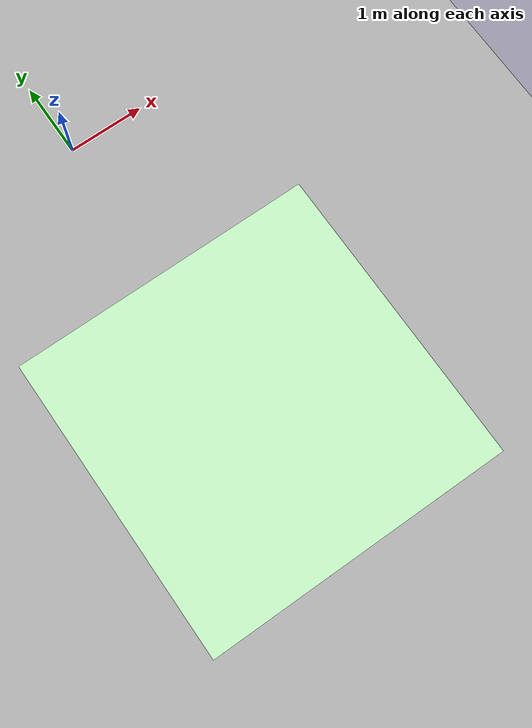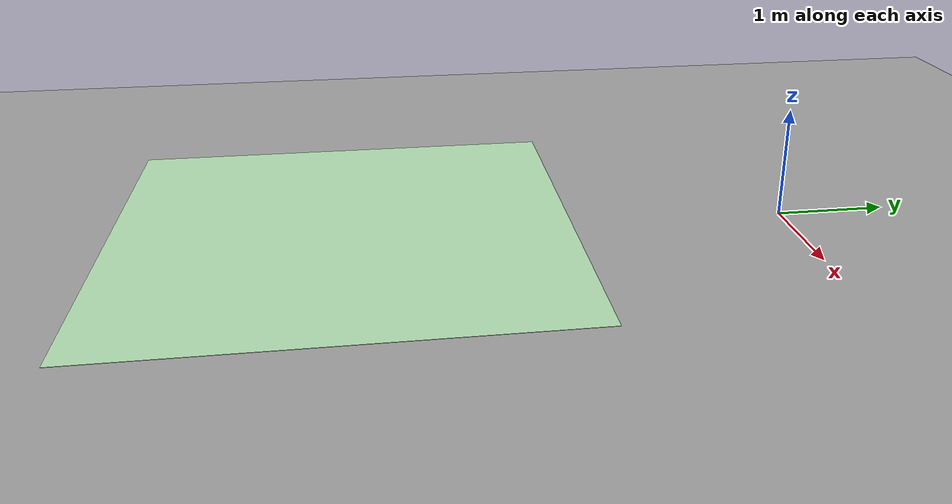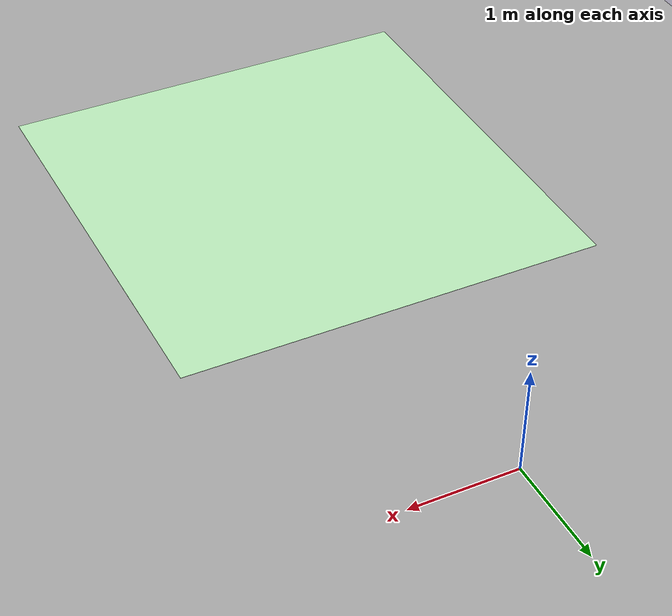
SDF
<?xml version="1.0" ?>
<?xml-model href="http://sdformat.org/schemas/root.xsd" schematypens="http://www.w3.org/2001/XMLSchema"?>
<sdf version="1.5">
  <world name="default">

    <gui fullscreen="1"></gui>

    <include>
  	  <uri>model://sun</uri>
	  </include>

    <!-- Ground -->
	  <include>
  		<uri>model://grass_plane</uri>
	  </include>

    <!-- JdeRobot Logo -->
    <include>
		  <name>logo</name>
			<uri>model://logoJdeRobot</uri>
			<pose>0 -4 0 0 0 0</pose>
	  </include>

		<!-- Sky -->
	  <scene>
        <shadows>0</shadows>
        <ambient>0.4 0.4 0.4 1.0</ambient>
        <background>0.7 0.7 0.7 1</background>
	    <sky>
	        <clouds>
	            <speed>12</speed>
	        </clouds>
	    </sky>
	  </scene>

    <!-- Only one ROS interface plugin is required per world, as any other plugin can connect a Gazebo
         topic to a ROS topic (or vise versa). -->
    <plugin name="ros_interface_plugin" filename="librotors_gazebo_ros_interface_plugin.so"/>

    <!-- coordinate system -->
    <spherical_coordinates>
      <surface_model>EARTH_WGS84</surface_model>
      <latitude_deg>47.3667</latitude_deg>
      <longitude_deg>8.5500</longitude_deg>
      <elevation>500.0</elevation>
      <heading_deg>0</heading_deg>
    </spherical_coordinates>

    <!-- physics engine -->
    <physics name="default_physics" default="0"  type='ode'>
      <ode>
        <solver>
          <type>quick</type>
          <iters>1000</iters>
          <sor>1.3</sor>
        </solver>
        <constraints>
          <cfm>0</cfm>
          <erp>0.2</erp>
          <contact_max_correcting_vel>100</contact_max_correcting_vel>
          <contact_surface_layer>0.001</contact_surface_layer>
        </constraints>
      </ode>
      <max_step_size>0.004</max_step_size>
      <real_time_factor>1</real_time_factor>
      <real_time_update_rate>250</real_time_update_rate>
      <magnetic_field>6.0e-06 2.3e-05 -4.2e-05</magnetic_field>
      <gravity>0 0 -9.8</gravity>
    </physics>

    <!-- turn off shadows -->
    <scene>
      <shadows>false</shadows>
      <sky>
        <clouds/>
      </sky>
    </scene>
  </world>
</sdf>

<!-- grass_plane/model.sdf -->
<sdf version="1.4">
  <model name="grass_plane">
    <static>true</static>
    <link name="link">
      <collision name="collision">
        <geometry>
          <plane>
            <normal>0 0 1</normal>
            <size>750 750</size>
          </plane>
        </geometry>
        <surface>
          <friction>
            <ode>
              <mu>0.5</mu>
              <mu2>.5</mu2>
            </ode>
          </friction>
        </surface>
      </collision>

      <visual name="visual_0">
        <pose>2 -5 0 0 0 0</pose>

        <cast_shadows>false</cast_shadows>
        <geometry>
          <mesh>
            <uri>model://grass_plane/meshes/grass_plane.dae</uri>
            <scale>3 3 1</scale>
          </mesh>
        </geometry>
      </visual>
    </link>
  </model>
</sdf>

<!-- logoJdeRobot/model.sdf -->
<sdf version="1.6">
  <model name="logoJdeRobot">
    <static>true</static>
    <link name="link">
      <collision name="collision">
        <geometry>
          <plane>
            <normal>0 0 1</normal>
            <size>1 1</size>
          </plane>
        </geometry>
        <surface>
          <friction>
            <ode>
              <mu>0.5</mu>
              <mu2>.5</mu2>
            </ode>
          </friction>
        </surface>
      </collision>

      <visual name="visual_0">
        <pose>0 0 0.1 0 0 0</pose>

        <cast_shadows>false</cast_shadows>
        <geometry>
          <plane>
            <normal>0 0 1</normal>
            <size>4 4</size>
          </plane>
        </geometry>
        <material>
          <ambient>0.8 1.0 0.8 1.0</ambient>
          <diffuse>0.8 1.0 0.8 1.0</diffuse>
          <specular>0.1 0.1 0.1 1.0</specular>
          <pbr>
            <metal>
              <albedo_map>
                model://logoJdeRobot/materials/textures/logoJdeRobot.png</albedo_map>
            </metal>
          </pbr>
        </material>
      </visual>
    </link>
  </model>
</sdf>
